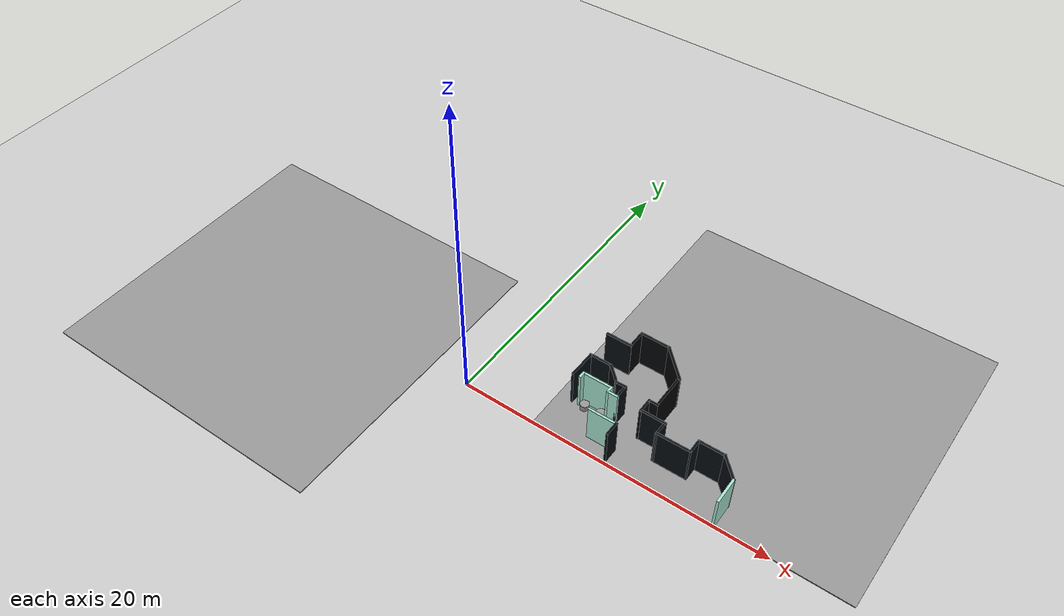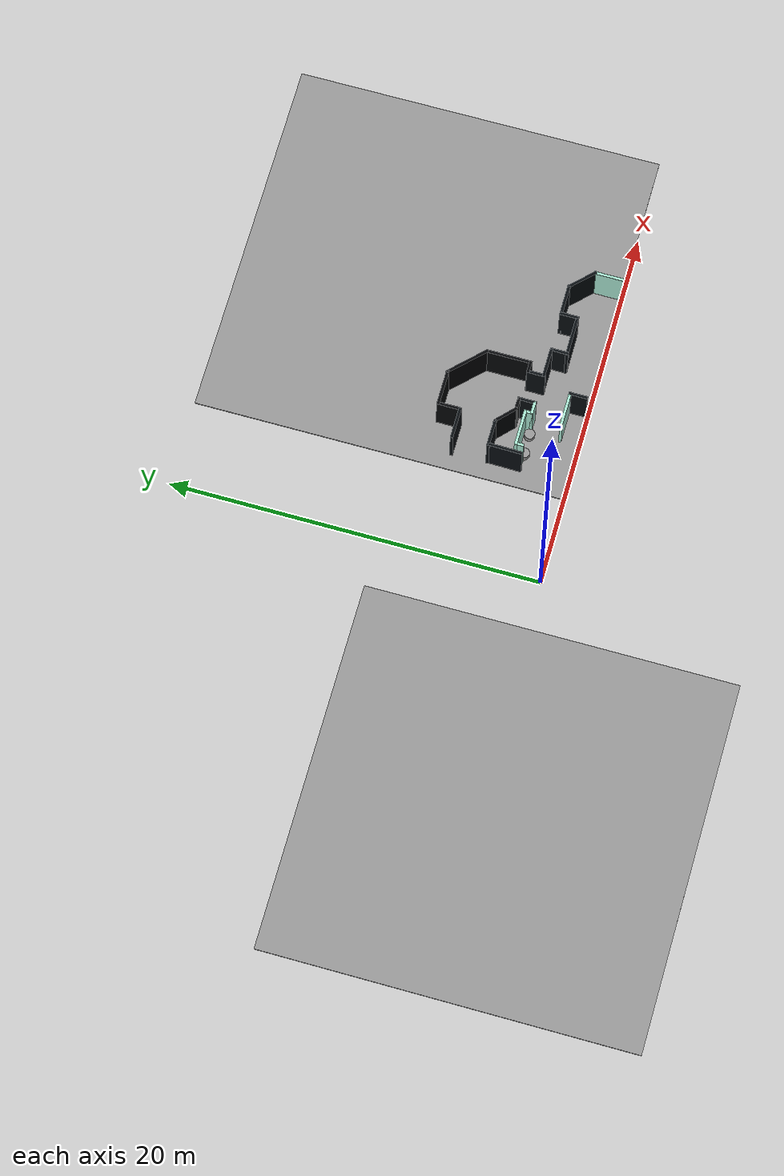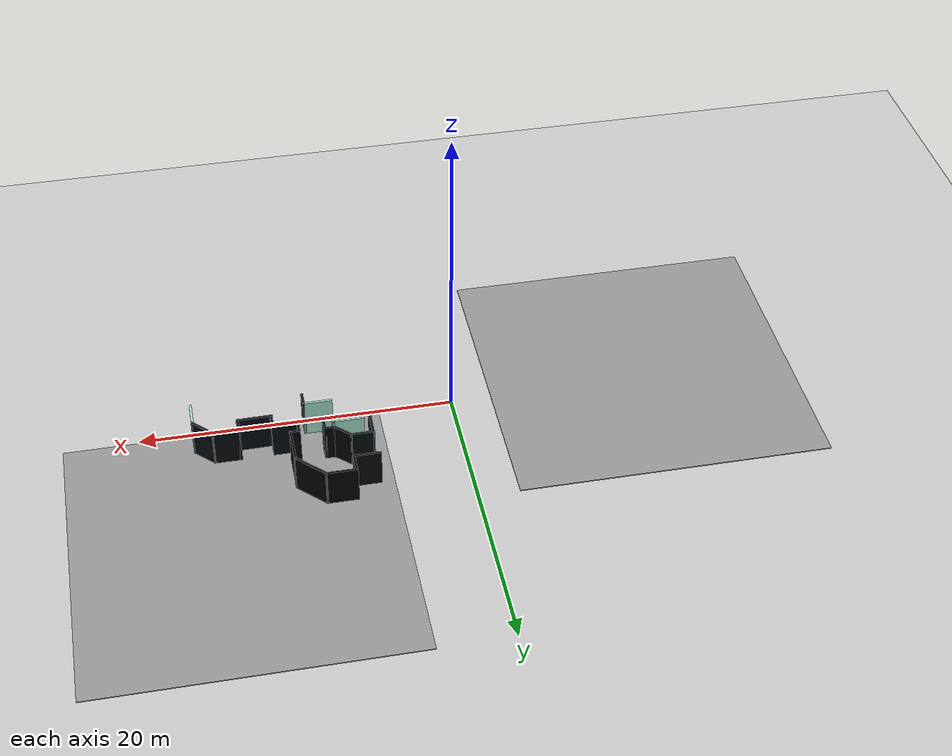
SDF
<sdf version="1.7">
 <world name="default">
  <model name="ground_plane">
   <static>1</static>
   <link name="link">
    <collision name="collision">
     <geometry><plane><normal>0 0 1</normal><size>100 100</size></plane></geometry>
     <surface><friction><ode><mu>100</mu><mu2>50</mu2></ode></friction></surface>
    </collision>
    <visual name="visual">
     <cast_shadows>0</cast_shadows>
     <geometry><plane><normal>0 0 1</normal><size>100 100</size></plane></geometry>
     <material>
      <script><uri>file://media/materials/scripts/gazebo.material</uri><name>Gazebo/Grey</name></script>
      <ambient>0.55 0.55 0.53 1</ambient>
      <diffuse>0.55 0.55 0.53 1</diffuse>
      <specular>0.08 0.08 0.08 1</specular>
      <emissive>0 0 0 1</emissive>
     </material>
    </visual>
   </link>
  </model>
  <model name="among_us_world">
   <pose>0.133216 -0.12311 0 0 -0 0</pose>
   <link name="Wall_10">
    <collision name="Wall_10_Collision">
     <geometry><box><size>0.677967 0.15 2.5</size></box></geometry>
     <pose>0 0 1.25 0 -0 0</pose>
    </collision>
    <visual name="Wall_10_Visual">
     <pose>0 0 1.25 0 -0 0</pose>
     <geometry><box><size>0.677967 0.15 2.5</size></box></geometry>
     <material>
      <script><uri>file://media/materials/scripts/gazebo.material</uri><name>Gazebo/Motorway</name></script>
      <ambient>0.012 0.018 0.024 1</ambient>
      <diffuse>0.012 0.018 0.024 1</diffuse>
      <specular>0.08 0.08 0.08 1</specular>
      <emissive>0 0 0 1</emissive>
     </material>
     <meta><layer>0</layer></meta>
    </visual>
    <pose>10.3484 3.61514 0 0 -0 3.14159</pose>
   </link>
   <link name="Wall_11">
    <collision name="Wall_11_Collision">
     <geometry><box><size>1 0.15 2.5</size></box></geometry>
     <pose>0 0 1.25 0 -0 0</pose>
    </collision>
    <visual name="Wall_11_Visual">
     <pose>0 0 1.25 0 -0 0</pose>
     <geometry><box><size>1 0.15 2.5</size></box></geometry>
     <material>
      <script><uri>file://media/materials/scripts/gazebo.material</uri><name>Gazebo/Motorway</name></script>
      <ambient>0.025 0.045 0.06 1</ambient>
      <diffuse>0.025 0.045 0.06 1</diffuse>
      <specular>0.08 0.08 0.08 1</specular>
      <emissive>0 0 0 1</emissive>
     </material>
     <meta><layer>0</layer></meta>
    </visual>
    <pose>10.0844 3.17225 0 0 -0 -1.5708</pose>
   </link>
   <link name="Wall_118">
    <collision name="Wall_118_Collision">
     <geometry><box><size>1.5 0.15 2.5</size></box></geometry>
     <pose>0 0 1.25 0 -0 0</pose>
    </collision>
    <visual name="Wall_118_Visual">
     <pose>0 0 1.25 0 -0 0</pose>
     <geometry><box><size>1.5 0.15 2.5</size></box></geometry>
     <material>
      <script><uri>file://media/materials/scripts/gazebo.material</uri><name>Gazebo/Motorway</name></script>
      <ambient>0.025 0.045 0.06 1</ambient>
      <diffuse>0.025 0.045 0.06 1</diffuse>
      <specular>0.08 0.08 0.08 1</specular>
      <emissive>0 0 0 1</emissive>
     </material>
     <meta><layer>0</layer></meta>
    </visual>
    <pose>6.27303 4.52497 0 0 -0 0</pose>
   </link>
   <link name="Wall_119">
    <collision name="Wall_119_Collision">
     <geometry><box><size>1.41276 0.15 2.5</size></box></geometry>
     <pose>0 0 1.25 0 -0 0</pose>
    </collision>
    <visual name="Wall_119_Visual">
     <pose>0 0 1.25 0 -0 0</pose>
     <geometry><box><size>1.41276 0.15 2.5</size></box></geometry>
     <material>
      <script><uri>file://media/materials/scripts/gazebo.material</uri><name>Gazebo/Motorway</name></script>
      <ambient>0.012 0.018 0.024 1</ambient>
      <diffuse>0.012 0.018 0.024 1</diffuse>
      <specular>0.08 0.08 0.08 1</specular>
      <emissive>0 0 0 1</emissive>
     </material>
     <meta><layer>0</layer></meta>
    </visual>
    <pose>7.42533 4.09435 0 0 -0 -0.750545</pose>
   </link>
   <link name="Wall_12">
    <collision name="Wall_12_Collision">
     <geometry><box><size>1.67797 0.15 2.5</size></box></geometry>
     <pose>0 0 1.25 0 -0 0</pose>
    </collision>
    <visual name="Wall_12_Visual">
     <pose>0 0 1.25 0 -0 0</pose>
     <geometry><box><size>1.67797 0.15 2.5</size></box></geometry>
     <material>
      <script><uri>file://media/materials/scripts/gazebo.material</uri><name>Gazebo/Motorway</name></script>
      <ambient>0.025 0.045 0.06 1</ambient>
      <diffuse>0.025 0.045 0.06 1</diffuse>
      <specular>0.08 0.08 0.08 1</specular>
      <emissive>0 0 0 1</emissive>
     </material>
     <meta><layer>0</layer></meta>
    </visual>
    <pose>10.8484 2.76514 0 0 -0 0</pose>
   </link>
   <link name="Wall_122">
    <collision name="Wall_122_Collision">
     <geometry><box><size>0.75 0.15 2.5</size></box></geometry>
     <pose>0 0 1.25 0 -0 0</pose>
    </collision>
    <visual name="Wall_122_Visual">
     <pose>0 0 1.25 0 -0 0</pose>
     <geometry><box><size>0.75 0.15 2.5</size></box></geometry>
     <material>
      <script><uri>file://media/materials/scripts/gazebo.material</uri><name>Gazebo/Motorway</name></script>
      <ambient>0.012 0.018 0.024 1</ambient>
      <diffuse>0.012 0.018 0.024 1</diffuse>
      <specular>0.08 0.08 0.08 1</specular>
      <emissive>0 0 0 1</emissive>
     </material>
     <meta><layer>0</layer></meta>
    </visual>
    <pose>8.18707 3.66372 0 0 -0 0</pose>
   </link>
   <link name="Wall_123">
    <collision name="Wall_123_Collision">
     <geometry><box><size>1 0.15 2.5</size></box></geometry>
     <pose>0 0 1.25 0 -0 0</pose>
    </collision>
    <visual name="Wall_123_Visual">
     <pose>0 0 1.25 0 -0 0</pose>
     <geometry><box><size>1 0.15 2.5</size></box></geometry>
     <material>
      <script><uri>file://media/materials/scripts/gazebo.material</uri><name>Gazebo/Motorway</name></script>
      <ambient>0.025 0.045 0.06 1</ambient>
      <diffuse>0.025 0.045 0.06 1</diffuse>
      <specular>0.08 0.08 0.08 1</specular>
      <emissive>0 0 0 1</emissive>
     </material>
     <meta><layer>0</layer></meta>
    </visual>
    <pose>8.48707 3.23872 0 0 -0 -1.5708</pose>
   </link>
   <link name="Wall_124">
    <collision name="Wall_124_Collision">
     <geometry><box><size>0.75 0.15 2.5</size></box></geometry>
     <pose>0 0 1.25 0 -0 0</pose>
    </collision>
    <visual name="Wall_124_Visual">
     <pose>0 0 1.25 0 -0 0</pose>
     <geometry><box><size>0.75 0.15 2.5</size></box></geometry>
     <material>
      <script><uri>file://media/materials/scripts/gazebo.material</uri><name>Gazebo/Motorway</name></script>
      <ambient>0.66 0.90 0.82 1</ambient>
      <diffuse>0.66 0.90 0.82 1</diffuse>
      <specular>0.08 0.08 0.08 1</specular>
      <emissive>0 0 0 1</emissive>
     </material>
     <meta><layer>0</layer></meta>
    </visual>
    <pose>8.18707 2.81372 0 0 -0 3.14159</pose>
   </link>
   <link name="Wall_125">
    <collision name="Wall_125_Collision">
     <geometry><box><size>0.5 0.15 2.5</size></box></geometry>
     <pose>0 0 1.25 0 -0 0</pose>
    </collision>
    <visual name="Wall_125_Visual">
     <pose>0 0 1.25 0 -0 0</pose>
     <geometry><box><size>0.5 0.15 2.5</size></box></geometry>
     <material>
      <script><uri>file://media/materials/scripts/gazebo.material</uri><name>Gazebo/Motorway</name></script>
      <ambient>0.66 0.90 0.82 1</ambient>
      <diffuse>0.66 0.90 0.82 1</diffuse>
      <specular>0.08 0.08 0.08 1</specular>
      <emissive>0 0 0 1</emissive>
     </material>
     <meta><layer>0</layer></meta>
    </visual>
    <pose>7.88707 2.98872 0 0 -0 1.5708</pose>
   </link>
   <link name="Wall_126">
    <collision name="Wall_126_Collision">
     <geometry><box><size>2 0.15 2.5</size></box></geometry>
     <pose>0 0 1.25 0 -0 0</pose>
    </collision>
    <visual name="Wall_126_Visual">
     <pose>0 0 1.25 0 -0 0</pose>
     <geometry><box><size>2 0.15 2.5</size></box></geometry>
     <material>
      <script><uri>file://media/materials/scripts/gazebo.material</uri><name>Gazebo/Motorway</name></script>
      <ambient>0.66 0.90 0.82 1</ambient>
      <diffuse>0.66 0.90 0.82 1</diffuse>
      <specular>0.08 0.08 0.08 1</specular>
      <emissive>0 0 0 1</emissive>
     </material>
     <meta><layer>0</layer></meta>
    </visual>
    <pose>6.96207 3.16372 0 0 -0 3.14159</pose>
   </link>
   <link name="Wall_127">
    <collision name="Wall_127_Collision">
     <geometry><box><size>0.5 0.15 2.5</size></box></geometry>
     <pose>0 0 1.25 0 -0 0</pose>
    </collision>
    <visual name="Wall_127_Visual">
     <pose>0 0 1.25 0 -0 0</pose>
     <geometry><box><size>0.5 0.15 2.5</size></box></geometry>
     <material>
      <script><uri>file://media/materials/scripts/gazebo.material</uri><name>Gazebo/Motorway</name></script>
      <ambient>0.66 0.90 0.82 1</ambient>
      <diffuse>0.66 0.90 0.82 1</diffuse>
      <specular>0.08 0.08 0.08 1</specular>
      <emissive>0 0 0 1</emissive>
     </material>
     <meta><layer>0</layer></meta>
    </visual>
    <pose>6.03707 2.98872 0 0 -0 -1.5708</pose>
   </link>
   <link name="Wall_13">
    <collision name="Wall_13_Collision">
     <geometry><box><size>0.99953 0.15 2.5</size></box></geometry>
     <pose>0 0 1.25 0 -0 0</pose>
    </collision>
    <visual name="Wall_13_Visual">
     <pose>0 0 1.25 0 -0 0</pose>
     <geometry><box><size>0.99953 0.15 2.5</size></box></geometry>
     <material>
      <script><uri>file://media/materials/scripts/gazebo.material</uri><name>Gazebo/Motorway</name></script>
      <ambient>0.025 0.045 0.06 1</ambient>
      <diffuse>0.025 0.045 0.06 1</diffuse>
      <specular>0.08 0.08 0.08 1</specular>
      <emissive>0 0 0 1</emissive>
     </material>
     <meta><layer>0</layer></meta>
    </visual>
    <pose>11.6124 2.34037 0 0 -0 -1.5708</pose>
   </link>
   <link name="Wall_132">
    <collision name="Wall_132_Collision">
     <geometry><box><size>1.85593 0.15 2.5</size></box></geometry>
     <pose>0 0 1.25 0 -0 0</pose>
    </collision>
    <visual name="Wall_132_Visual">
     <pose>0 0 1.25 0 -0 0</pose>
     <geometry><box><size>1.85593 0.15 2.5</size></box></geometry>
     <material>
      <script><uri>file://media/materials/scripts/gazebo.material</uri><name>Gazebo/Motorway</name></script>
      <ambient>0.66 0.90 0.82 1</ambient>
      <diffuse>0.66 0.90 0.82 1</diffuse>
      <specular>0.08 0.08 0.08 1</specular>
      <emissive>0 0 0 1</emissive>
     </material>
     <meta><layer>0</layer></meta>
    </visual>
    <pose>8.60867 1.18235 0 0 -0 0</pose>
   </link>
   <link name="Wall_133">
    <collision name="Wall_133_Collision">
     <geometry><box><size>1 0.15 2.5</size></box></geometry>
     <pose>0 0 1.25 0 -0 0</pose>
    </collision>
    <visual name="Wall_133_Visual">
     <pose>0 0 1.25 0 -0 0</pose>
     <geometry><box><size>1 0.15 2.5</size></box></geometry>
     <material>
      <script><uri>file://media/materials/scripts/gazebo.material</uri><name>Gazebo/Motorway</name></script>
      <ambient>0.025 0.045 0.06 1</ambient>
      <diffuse>0.025 0.045 0.06 1</diffuse>
      <specular>0.08 0.08 0.08 1</specular>
      <emissive>0 0 0 1</emissive>
     </material>
     <meta><layer>0</layer></meta>
    </visual>
    <pose>9.47952 0.757351 0 0 -0 -1.5708</pose>
   </link>
   <link name="Wall_14">
    <collision name="Wall_14_Collision">
     <geometry><box><size>2.25007 0.15 2.5</size></box></geometry>
     <pose>0 0 1.25 0 -0 0</pose>
    </collision>
    <visual name="Wall_14_Visual">
     <pose>0 0 1.25 0 -0 0</pose>
     <geometry><box><size>2.25007 0.15 2.5</size></box></geometry>
     <material>
      <script><uri>file://media/materials/scripts/gazebo.material</uri><name>Gazebo/Motorway</name></script>
      <ambient>0.025 0.045 0.06 1</ambient>
      <diffuse>0.025 0.045 0.06 1</diffuse>
      <specular>0.08 0.08 0.08 1</specular>
      <emissive>0 0 0 1</emissive>
     </material>
     <meta><layer>0</layer></meta>
    </visual>
    <pose>12.6445 1.92431 0 0 -0 0.008281</pose>
   </link>
   <link name="Wall_15">
    <collision name="Wall_15_Collision">
     <geometry><box><size>1.02562 0.15 2.5</size></box></geometry>
     <pose>0 0 1.25 0 -0 0</pose>
    </collision>
    <visual name="Wall_15_Visual">
     <pose>0 0 1.25 0 -0 0</pose>
     <geometry><box><size>1.02562 0.15 2.5</size></box></geometry>
     <material>
      <script><uri>file://media/materials/scripts/gazebo.material</uri><name>Gazebo/Motorway</name></script>
      <ambient>0.025 0.045 0.06 1</ambient>
      <diffuse>0.025 0.045 0.06 1</diffuse>
      <specular>0.08 0.08 0.08 1</specular>
      <emissive>0 0 0 1</emissive>
     </material>
     <meta><layer>0</layer></meta>
    </visual>
    <pose>13.7124 2.37081 0 0 -0 1.5708</pose>
   </link>
   <link name="Wall_179">
    <collision name="Wall_179_Collision">
     <geometry><box><size>1.90693 0.15 2.5</size></box></geometry>
     <pose>0 0 1.25 0 -0 0</pose>
    </collision>
    <visual name="Wall_179_Visual">
     <pose>0 0 1.25 0 -0 0</pose>
     <geometry><box><size>1.90693 0.15 2.5</size></box></geometry>
     <material>
      <script><uri>file://media/materials/scripts/gazebo.material</uri><name>Gazebo/Motorway</name></script>
      <ambient>0.025 0.045 0.06 1</ambient>
      <diffuse>0.025 0.045 0.06 1</diffuse>
      <specular>0.08 0.08 0.08 1</specular>
      <emissive>0 0 0 1</emissive>
     </material>
     <meta><layer>0</layer></meta>
    </visual>
    <pose>5.59803 3.64664 0 0 -0 -1.58851</pose>
   </link>
   <link name="Wall_19">
    <collision name="Wall_19_Collision">
     <geometry><box><size>1.75 0.15 2.5</size></box></geometry>
     <pose>0 0 1.25 0 -0 0</pose>
    </collision>
    <visual name="Wall_19_Visual">
     <pose>0 0 1.25 0 -0 0</pose>
     <geometry><box><size>1.75 0.15 2.5</size></box></geometry>
     <material>
      <script><uri>file://media/materials/scripts/gazebo.material</uri><name>Gazebo/Motorway</name></script>
      <ambient>0.025 0.045 0.06 1</ambient>
      <diffuse>0.025 0.045 0.06 1</diffuse>
      <specular>0.08 0.08 0.08 1</specular>
      <emissive>0 0 0 1</emissive>
     </material>
     <meta><layer>0</layer></meta>
    </visual>
    <pose>14.5124 2.80862 0 0 -0 0</pose>
   </link>
   <link name="Wall_20">
    <collision name="Wall_20_Collision">
     <geometry><box><size>1.75 0.15 2.5</size></box></geometry>
     <pose>0 0 1.25 0 -0 0</pose>
    </collision>
    <visual name="Wall_20_Visual">
     <pose>0 0 1.25 0 -0 0</pose>
     <geometry><box><size>1.75 0.15 2.5</size></box></geometry>
     <material>
      <script><uri>file://media/materials/scripts/gazebo.material</uri><name>Gazebo/Motorway</name></script>
      <ambient>0.025 0.045 0.06 1</ambient>
      <diffuse>0.025 0.045 0.06 1</diffuse>
      <specular>0.08 0.08 0.08 1</specular>
      <emissive>0 0 0 1</emissive>
     </material>
     <meta><layer>0</layer></meta>
    </visual>
    <pose>15.8781 2.24293 0 0 -0 -0.785398</pose>
   </link>
   <link name="Wall_21">
    <collision name="Wall_21_Collision">
     <geometry><box><size>1.75 0.15 2.5</size></box></geometry>
     <pose>0 0 1.25 0 -0 0</pose>
    </collision>
    <visual name="Wall_21_Visual">
     <pose>0 0 1.25 0 -0 0</pose>
     <geometry><box><size>1.75 0.15 2.5</size></box></geometry>
     <material>
      <script><uri>file://media/materials/scripts/gazebo.material</uri><name>Gazebo/Motorway</name></script>
      <ambient>0.66 0.90 0.82 1</ambient>
      <diffuse>0.66 0.90 0.82 1</diffuse>
      <specular>0.08 0.08 0.08 1</specular>
      <emissive>0 0 0 1</emissive>
     </material>
     <meta><layer>0</layer></meta>
    </visual>
    <pose>16.4438 0.877247 0 0 -0 -1.5708</pose>
   </link>
   <link name="Wall_5">
    <collision name="Wall_5_Collision">
     <geometry><box><size>1.75 0.15 2.5</size></box></geometry>
     <pose>0 0 1.25 0 -0 0</pose>
    </collision>
    <visual name="Wall_5_Visual">
     <pose>0 0 1.25 0 -0 0</pose>
     <geometry><box><size>1.75 0.15 2.5</size></box></geometry>
     <material>
      <script><uri>file://media/materials/scripts/gazebo.material</uri><name>Gazebo/Motorway</name></script>
      <ambient>0.025 0.045 0.06 1</ambient>
      <diffuse>0.025 0.045 0.06 1</diffuse>
      <specular>0.08 0.08 0.08 1</specular>
      <emissive>0 0 0 1</emissive>
     </material>
     <meta><layer>0</layer></meta>
    </visual>
    <pose>6.30068 6.44797 0 0 -0 0</pose>
   </link>
   <link name="Wall_6">
    <collision name="Wall_6_Collision">
     <geometry><box><size>1.31331 0.15 2.5</size></box></geometry>
     <pose>0 0 1.25 0 -0 0</pose>
    </collision>
    <visual name="Wall_6_Visual">
     <pose>0 0 1.25 0 -0 0</pose>
     <geometry><box><size>1.31331 0.15 2.5</size></box></geometry>
     <material>
      <script><uri>file://media/materials/scripts/gazebo.material</uri><name>Gazebo/Motorway</name></script>
      <ambient>0.012 0.018 0.024 1</ambient>
      <diffuse>0.012 0.018 0.024 1</diffuse>
      <specular>0.08 0.08 0.08 1</specular>
      <emissive>0 0 0 1</emissive>
     </material>
     <meta><layer>0</layer></meta>
    </visual>
    <pose>7.10068 7.04518 0 0 -0 1.5708</pose>
   </link>
   <link name="Wall_7">
    <collision name="Wall_7_Collision">
     <geometry><box><size>2 0.15 2.5</size></box></geometry>
     <pose>0 0 1.25 0 -0 0</pose>
    </collision>
    <visual name="Wall_7_Visual">
     <pose>0 0 1.25 0 -0 0</pose>
     <geometry><box><size>2 0.15 2.5</size></box></geometry>
     <material>
      <script><uri>file://media/materials/scripts/gazebo.material</uri><name>Gazebo/Motorway</name></script>
      <ambient>0.012 0.018 0.024 1</ambient>
      <diffuse>0.012 0.018 0.024 1</diffuse>
      <specular>0.08 0.08 0.08 1</specular>
      <emissive>0 0 0 1</emissive>
     </material>
     <meta><layer>0</layer></meta>
    </visual>
    <pose>8.02568 7.62684 0 0 -0 0</pose>
   </link>
   <link name="Wall_8">
    <collision name="Wall_8_Collision">
     <geometry><box><size>2.5 0.15 2.5</size></box></geometry>
     <pose>0 0 1.25 0 -0 0</pose>
    </collision>
    <visual name="Wall_8_Visual">
     <pose>0 0 1.25 0 -0 0</pose>
     <geometry><box><size>2.5 0.15 2.5</size></box></geometry>
     <material>
      <script><uri>file://media/materials/scripts/gazebo.material</uri><name>Gazebo/Motorway</name></script>
      <ambient>0.012 0.018 0.024 1</ambient>
      <diffuse>0.012 0.018 0.024 1</diffuse>
      <specular>0.08 0.08 0.08 1</specular>
      <emissive>0 0 0 1</emissive>
     </material>
     <meta><layer>0</layer></meta>
    </visual>
    <pose>9.78153 6.79599 0 0 -0 -0.785398</pose>
   </link>
   <link name="Wall_9">
    <collision name="Wall_9_Collision">
     <geometry><box><size>2.5 0.15 2.5</size></box></geometry>
     <pose>0 0 1.25 0 -0 0</pose>
    </collision>
    <visual name="Wall_9_Visual">
     <pose>0 0 1.25 0 -0 0</pose>
     <geometry><box><size>2.5 0.15 2.5</size></box></geometry>
     <material>
      <script><uri>file://media/materials/scripts/gazebo.material</uri><name>Gazebo/Motorway</name></script>
      <ambient>0.012 0.018 0.024 1</ambient>
      <diffuse>0.012 0.018 0.024 1</diffuse>
      <specular>0.08 0.08 0.08 1</specular>
      <emissive>0 0 0 1</emissive>
     </material>
     <meta><layer>0</layer></meta>
    </visual>
    <pose>10.6124 4.79014 0 0 -0 -1.5708</pose>
   </link>
   <static>1</static>
  </model>
  <model name="first_2015_trash_can_clone_1">
   <link name="link">
    <inertial>
     <pose>0 0 0.3683 0 -0 0</pose>
     <mass>4.83076</mass>
     <inertia>
      <ixx>0.281534</ixx>
      <ixy>0</ixy>
      <ixz>0</ixz>
      <iyy>0.281534</iyy>
      <iyz>0</iyz>
      <izz>0.126223</izz>
     </inertia>
    </inertial>
    <visual name="visual">
     <geometry><cylinder><radius>0.28</radius><length>0.75</length></cylinder></geometry>
     <material>
      <script><uri>file://media/materials/scripts/gazebo.material</uri><name>Gazebo/Grey</name></script>
      <ambient>0.42 0.43 0.42 1</ambient>
      <diffuse>0.42 0.43 0.42 1</diffuse>
      <specular>0.08 0.08 0.08 1</specular>
      <emissive>0 0 0 1</emissive>
     </material>
    </visual>
    <collision name="collision">
     <geometry><cylinder><radius>0.28</radius><length>0.75</length></cylinder></geometry>
    </collision>
   </link>
   <pose>7.69532 2.6674 0.022023 0.038384 -0.038428 -0.109071</pose>
  </model>
  <model name="first_2015_trash_can_clone_2">
   <link name="link">
    <inertial>
     <pose>0 0 0.3683 0 -0 0</pose>
     <mass>4.83076</mass>
     <inertia>
      <ixx>0.281534</ixx>
      <ixy>0</ixy>
      <ixz>0</ixz>
      <iyy>0.281534</iyy>
      <iyz>0</iyz>
      <izz>0.126223</izz>
     </inertia>
    </inertial>
    <visual name="visual">
     <geometry><cylinder><radius>0.28</radius><length>0.75</length></cylinder></geometry>
     <material>
      <script><uri>file://media/materials/scripts/gazebo.material</uri><name>Gazebo/Grey</name></script>
      <ambient>0.42 0.43 0.42 1</ambient>
      <diffuse>0.42 0.43 0.42 1</diffuse>
      <specular>0.08 0.08 0.08 1</specular>
      <emissive>0 0 0 1</emissive>
     </material>
    </visual>
    <collision name="collision">
     <geometry><cylinder><radius>0.28</radius><length>0.75</length></cylinder></geometry>
    </collision>
   </link>
   <pose>6.5871 2.64232 0.009998 -1.6e-05 1.2e-05 0.047478</pose>
  </model>
  <model name="asphalt_plane">
   <static>1</static>
   <link name="link">
    <collision name="collision"><geometry><box><size>20 20 0.1</size></box></geometry></collision>
    <visual name="visual">
     <cast_shadows>0</cast_shadows>
     <geometry><box><size>20 20 0.1</size></box></geometry>
     <material>
      <script><uri>file://media/materials/scripts/gazebo.material</uri><name>Gazebo/Grey</name></script>
      <ambient>0.23 0.23 0.22 1</ambient>
      <diffuse>0.23 0.23 0.22 1</diffuse>
      <specular>0.08 0.08 0.08 1</specular>
      <emissive>0 0 0 1</emissive>
     </material>
    </visual>
   </link>
   <pose>-12.6134 -1.31009 -0.045514 0 -0 0</pose>
  </model>
  <model name="asphalt_plane_clone_0">
   <static>1</static>
   <link name="link">
    <collision name="collision"><geometry><box><size>20 20 0.1</size></box></geometry></collision>
    <visual name="visual">
     <cast_shadows>0</cast_shadows>
     <geometry><box><size>20 20 0.1</size></box></geometry>
     <material>
      <script><uri>file://media/materials/scripts/gazebo.material</uri><name>Gazebo/Grey</name></script>
      <ambient>0.23 0.23 0.22 1</ambient>
      <diffuse>0.23 0.23 0.22 1</diffuse>
      <specular>0.08 0.08 0.08 1</specular>
      <emissive>0 0 0 1</emissive>
     </material>
    </visual>
   </link>
   <pose>14.7555 10.0653 -0.045343 0 -0 0</pose>
  </model>
 </world>
</sdf>
